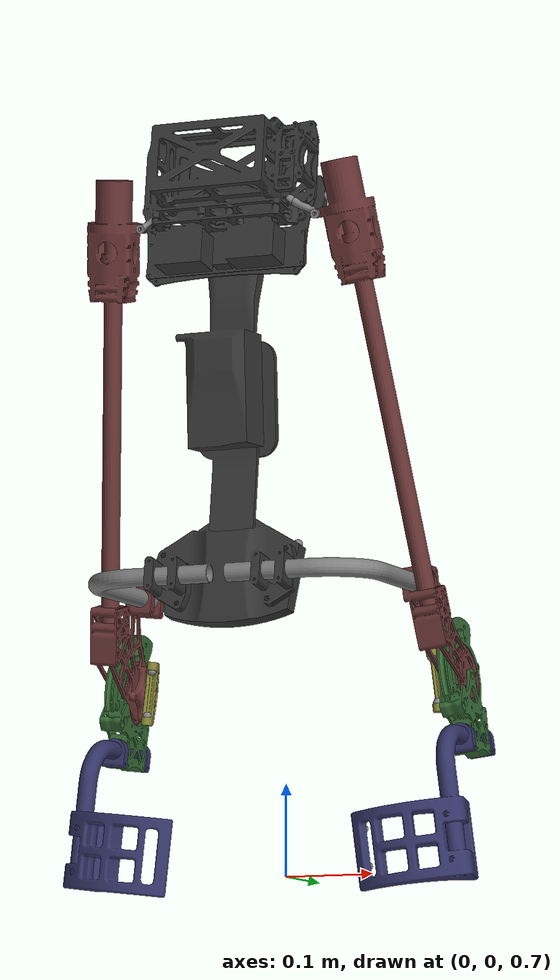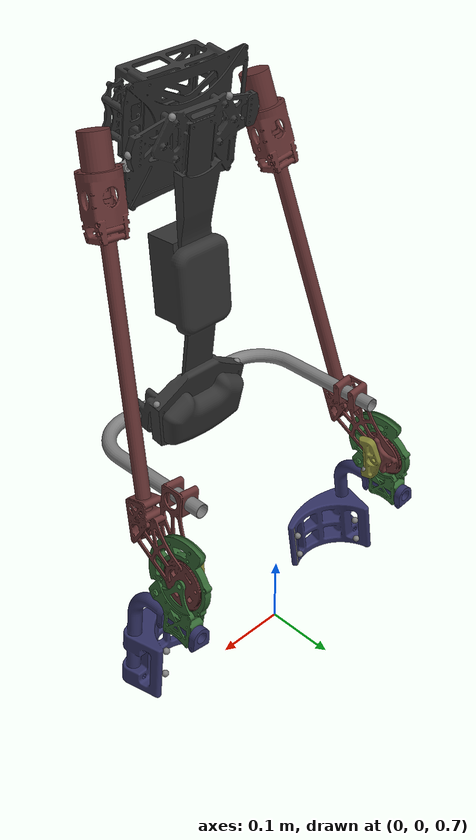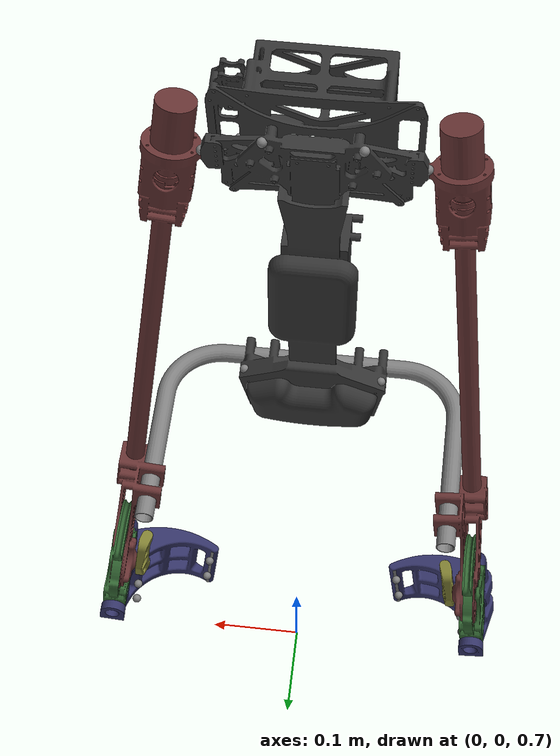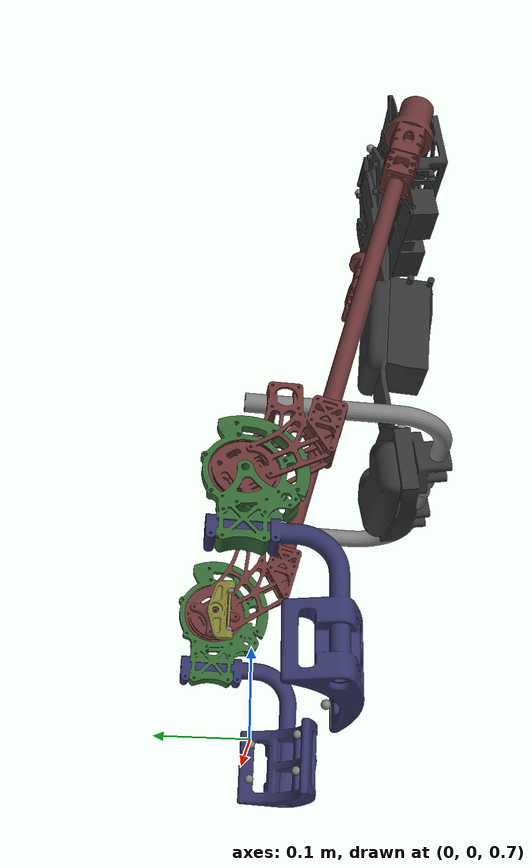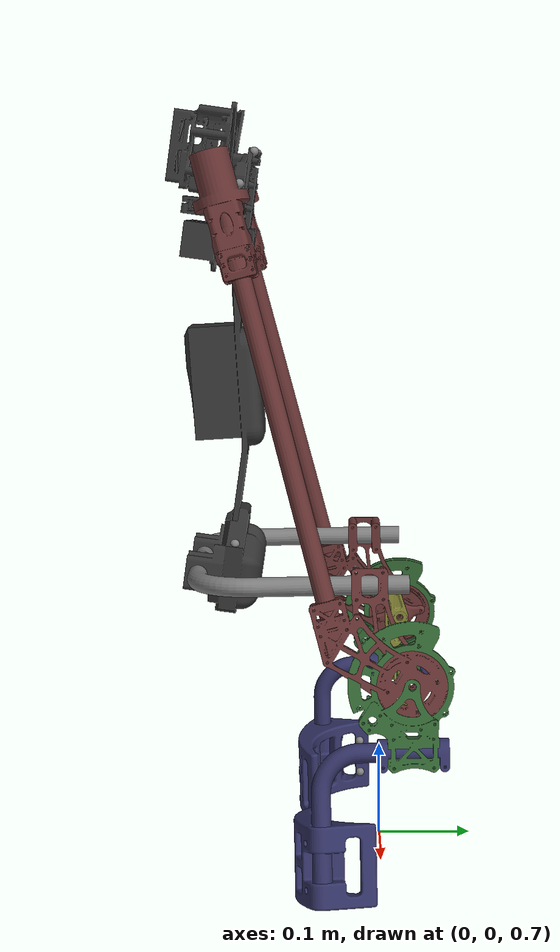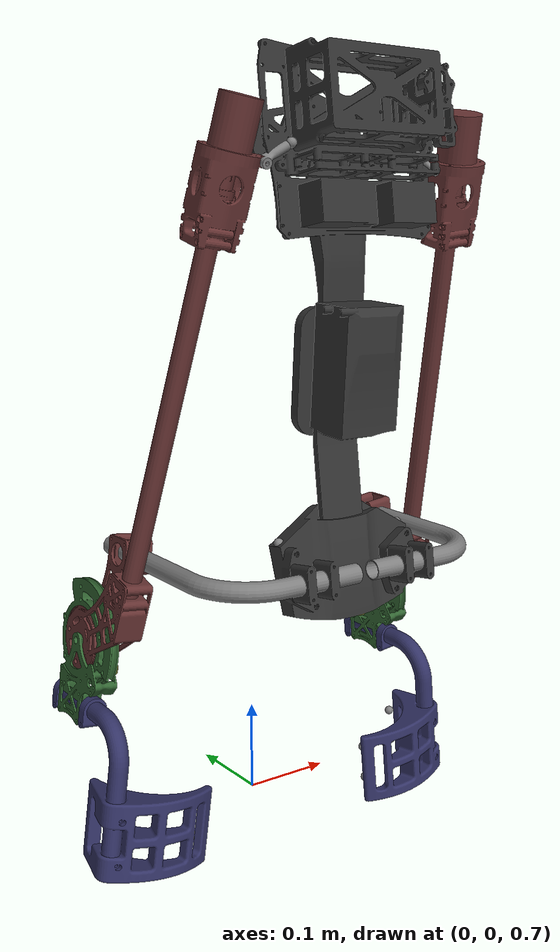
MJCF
<mujoco model="hipexo_v2_real_inertia">
    <compiler angle="radian" balanceinertia="true"/>

    <option gravity="0 0 -9.81"/>

    <!-- ==================== DEFAULT CLASSES ==================== -->
    <default>
        <!-- Exoskeleton-specific defaults wrapped in named class -->
        <default class="exo">
            <!-- Base settings for exoskeleton -->
            <joint stiffness="0" damping="0.5" armature="0.01"/>
            <geom contype="1" conaffinity="1"/>

            <!-- ===== GEOM CLASSES ===== -->
            <!-- Collision enabled (default for most parts) -->
            <default class="exo/collision">
                <geom contype="1" conaffinity="1"/>
            </default>

            <!-- Visual only - no collision (connector, hip_support) -->
            <default class="exo/visual">
                <geom contype="0" conaffinity="0"/>
            </default>

            <!-- ===== JOINT CLASSES ===== -->
            <!-- Structural joints (backpipe, pipe) - stiff connection -->
            <default class="exo/structural_joint">
                <joint stiffness="1" damping="1.0" armature="0.01" limited="true"/>
            </default>

            <!-- Active joints (hip, leg) - actuated -->
            <default class="exo/active_joint">
                <joint stiffness="0" damping="0.1" armature="0.05" limited="true"/>
            </default>

            <!-- Passive joints (connector, hip_support) - free rotation -->
            <default class="exo/passive_joint">
                <joint stiffness="0" damping="0.1" armature="0" limited="true"/>
            </default>
        </default>
    </default>

    <!-- ==================== ASSETS ==================== -->
    <asset>
        <!-- Materials for color distinction -->
        <material name="mat_backframe" rgba="0.2 0.2 0.2 1" specular="0.5" shininess="0.5"/>
        <material name="mat_backpipe" rgba="0.5 0.5 0.5 1" specular="0.3" shininess="0.2"/>
        <material name="mat_connector" rgba="0.5 0.5 0.5 1" specular="0.3" shininess="0.2"/>

        <material name="mat_joint" rgba="0.4 0.2 0.2 1" specular="0.7" shininess="0.6"/>
        <material name="mat_pulley" rgba="0.2 0.4 0.2 1" specular="0.6" shininess="0.4"/>
        <material name="mat_leg" rgba="0.2 0.2 0.4 1" specular="0.4" shininess="0.3"/>
        <material name="mat_hip_support" rgba="0.5 0.5 0.2 1" specular="0.4" shininess="0.3"/>

        <!-- Meshes -->
        <mesh name="backframe_base_bottom" file="../../TSAmesh/backframe_base_bottom.stl"/>
        <mesh name="backframe_base_top" file="../../TSAmesh/backframe_base_top.stl"/>
        <mesh name="backpipe_half" file="../../TSAmesh/backpipe_half.stl"/>
        <mesh name="connector" file="../../TSAmesh/connector.stl"/>
        <mesh name="hip_support" file="../../TSAmesh/hip_support.stl"/>
        <mesh name="joint_base" file="../../TSAmesh/joint_base.stl"/>
        <mesh name="joint_base_R" file="../../TSAmesh/joint_base_R.stl"/>
        <mesh name="leg" file="../../TSAmesh/leg.stl"/>
        <mesh name="leg_R" file="../../TSAmesh/leg_R.stl"/>
        <mesh name="pulley" file="../../TSAmesh/pulley.stl"/>
        <mesh name="pulley_R" file="../../TSAmesh/pulley_R.stl"/>
        <mesh name="tsa_motor_pipe" file="../../TSAmesh/tsa_motor_pipe.stl"/>
    </asset>

    <!-- ==================== WORLDBODY ==================== -->
    <worldbody>

        <body name="backframe_base_bottom" pos="0 -0.16 1" euler="-0.14 0 0">
            <freejoint name="root"/>
            <geom name="backframe_base_bottom_geom" type="mesh" mesh="backframe_base_bottom"
                  class="exo/collision" material="mat_backframe"/>
            <!-- backframe_base_bottom: from real_inertia.txt (at CoM) -->
            <inertial mass="0.57657479" pos="0 0.00694708 0.00196867"
                      fullinertia="0.00049371 0.00140837 0.00117938 0 0 -0.00001121"/>

            <site name="backframe_to_shoulder_bottom_L" pos="-0.075 0 0.037"/>
            <site name="backframe_to_shoulder_bottom_R" pos="0.075 0 0.037"/>

            <!-- ==================== BACKFRAME TOP ==================== -->
            <body name="backframe_base_top" pos="0 -0.001 0.05" euler="0 0 0">
                <geom name="backframe_base_top_geom" type="mesh" mesh="backframe_base_top"
                      class="exo/collision" material="mat_backframe"/>
                <!-- backframe_base_top: from real_inertia.txt (at CoM) -->
                <inertial mass="2.21336648" pos="0.00056857 -0.04887217 0.22887210"
                          fullinertia="0.02314268 0.02453637 0.00435991 -0.00004839 0.00024189 -0.00293655"/>

                <!-- Sites for shoulder strap (on backframe) -->

                <site name="backframe_to_shoulder_top_L" pos="-0.046 -0.035 0.395"/>
                <site name="backframe_to_shoulder_top_R" pos="0.046 -0.035 0.395"/>

                <!-- Sites for closed loop ball joints -->
                <site name="backframe_to_connector_L" pos="-0.104 -0.04317 0.35992"/>
                <site name="backframe_to_connector_R" pos="0.104 -0.04317 0.35992"/>

            </body>

            <!-- ==================== LEFT SIDE ==================== -->
            <body name="backpipe_half_L" pos="-0.16 0.183 0.035" euler="0.16 0 0">
                <joint name="backpipe_joint_L" type="hinge" axis="1 0 0" pos="0.15 -0.22 0"
                       class="exo/structural_joint" range="-0.3 0.3"/>
                <geom name="backpipe_half_L_geom" type="mesh" mesh="backpipe_half"
                      class="exo/visual" material="mat_backpipe"/>
                <!-- backpipe_half: from real_inertia.txt (at CoM) -->
                <inertial mass="0.05548025" pos="0.03328886 -0.14909289 0"
                          fullinertia="0.00029720 0.00012446 0.00041663 -0.00012871 0 0"/>

                <body name="joint_base_L" pos="-0.034 0 -0.098" euler="0 0.119 0">
                    <joint name="pipe_joint_L" type="hinge" axis="0 -1 0" pos="0.0225 -0.022 0.101"
                           class="exo/structural_joint" range="-0.5 0.5"/>
                    <geom name="joint_base_L_geom" type="mesh" mesh="joint_base"
                          class="exo/collision" material="mat_joint"/>
                    <!-- joint_base (L): from real_inertia.txt (at CoM) -->
                    <inertial mass="0.32399464" pos="0.00261229 -0.02913209 0.02882661"
                              fullinertia="0.00088962 0.00049096 0.00043956 0.00000556 0.00002313 -0.00024432"/>

                    <!-- Pulley & Leg -->
                    <body name="pulley_L" pos="0 0 0" euler="0 0 0">
                        <joint name="hip_joint_L" type="hinge" axis="-1 0 0" pos="0 0 0"
                               class="exo/active_joint" range="-2.2 0.3"/>
                        <geom name="pulley_L_geom" type="mesh" mesh="pulley"
                              class="exo/collision" material="mat_pulley"/>
                        <!-- pulley (L): from real_inertia.txt (at CoM) -->
                        <inertial mass="0.09716543" pos="-0.00013778 -0.01038359 -0.02273681"
                                  fullinertia="0.00023246 0.00017091 0.00007127 -0.00000035 -0.00000025 -0.00001507"/>

                        <body name="leg_L" pos="0 0 -0.0665" euler="0 0 0">
                            <joint name="leg_joint_L" type="hinge" axis="0 1 0" pos="0 0 0"
                                   class="exo/active_joint" range="-0.3 1.5708"/>
                            <geom name="leg_L_geom" type="mesh" mesh="leg"
                                  class="exo/visual" material="mat_leg"/>
                            <!-- leg (L): from real_inertia.txt (at CoM) -->
                            <inertial mass="0.40720231" pos="0.01271925 -0.07381513 -0.07182682"
                                      fullinertia="0.00185795 0.00149450 0.00091057 -0.00017231 -0.00021843 0.00058454"/>

                            <geom name="leg_in_L_contact" class="exo/collision" type="cylinder" size="0.005 0.04" pos="0.103 -0.104 -0.115"/>
                            <geom name="leg_out_L_contact" class="exo/collision" type="cylinder" size="0.005 0.04" pos="0.002 -0.045 -0.115"/>

                            <!-- Sites for leg_L strap -->

                            <site name="leg_top_in_L" pos="0.1 -0.095 -0.09"/>
                            <site name="leg_top_out_L" pos="0.02 -0.05 -0.09"/>
                            <site name="leg_bottom_in_L" pos="0.1 -0.095 -0.13"/>
                            <site name="leg_bottom_out_L" pos="0.02 -0.05 -0.13"/>
                        </body>
                    </body>

                    <!-- Hip support -->
                    <body name="hip_support_L" pos="0.019 0 0" euler="0 0 0">
                        <joint name="hip_support_joint_L" type="hinge" axis="1 0 0" pos="0 0 0"
                               class="exo/passive_joint" range="-0.5 0.5"/>
                        <geom name="hip_support_L_geom" type="mesh" mesh="hip_support"
                              class="exo/collision" material="mat_hip_support"/>
                        <!-- hip_support (L): from real_inertia.txt (at CoM) -->
                        <inertial mass="0.01250169" pos="0.00570428 -0.00749738 0"
                                  fullinertia="0.00000658 0.00000607 0.00000078 -0.00000012 0 0"/>

                        <!-- Sites for hip_L strap -->
                        <site name="hip_L_to_pelvis_L_top" pos="0.008 -0.016 0.025"/>
                        <site name="hip_L_to_pelvis_L_bottom" pos="0.008 -0.016 -0.025"/>
                    </body>

                    <!-- TSA motor pipe & connector -->
                    <body name="tsa_motor_pipe_L" pos="0 -0.170 0.441" euler="0.235 0 0">
                        <geom name="tsa_motor_pipe_L_geom" type="mesh" mesh="tsa_motor_pipe"
                              class="exo/collision" material="mat_joint"/>
                        <!-- tsa_motor_pipe (L): from real_inertia.txt (at CoM) -->
                        <inertial mass="0.68795278" pos="0.00008014 -0.00000370 0.04838748"
                                  fullinertia="0.00372618 0.00373338 0.00014605 0 -0.00000075 0.00000005"/>

                        <body name="connector_L" pos="0.0624 0 0.0713" euler="0 0.914 1.5708">
                            <joint name="connector_joint_L" type="hinge" axis="-1 0 0" pos="-0.005 0 -0.034"
                                   class="exo/passive_joint" range="-0.8 0.8"/>
                            <geom name="connector_L_geom" type="mesh" mesh="connector"
                                  class="exo/visual" material="mat_connector"/>
                            <!-- connector (L): from real_inertia.txt (at CoM) -->
                            <inertial mass="0.00278131" pos="0 0 -0.02005725"
                                      fullinertia="0.00000038 0.00000042 0.00000007 0 0 0"/>

                            <!-- Site for closed loop constraint -->
                            <site name="connector_L_to_backframe" pos="0 0 0"/>
                        </body>
                    </body>
                </body>
            </body>

            <!-- ==================== RIGHT SIDE ==================== -->
            <body name="backpipe_half_R" pos="0.16 0.183 0.035" euler="0.16 0 0">
                <joint name="backpipe_joint_R" type="hinge" axis="1 0 0" pos="-0.15 -0.22 0"
                       class="exo/structural_joint" range="-0.3 0.3"/>
                <geom name="backpipe_half_R_geom" type="mesh" mesh="backpipe_half" euler="0 3.14159 0"
                      class="exo/visual" material="mat_backpipe"/>
                <!-- backpipe_half (R): from real_inertia.txt (at CoM), X-mirrored -->
                <inertial mass="0.05548025" pos="-0.03328886 -0.14909289 0"
                          fullinertia="0.00029720 0.00012446 0.00041663 0.00012871 0 0"/>

                <body name="joint_base_R" pos="0.034 0 -0.098" euler="0 -0.119 0">
                    <joint name="pipe_joint_R" type="hinge" axis="0 -1 0" pos="-0.0225 -0.022 0.101"
                           class="exo/structural_joint" range="-0.5 0.5"/>
                    <geom name="joint_base_R_geom" type="mesh" mesh="joint_base_R"
                          class="exo/collision" material="mat_joint"/>
                    <!-- joint_base_R: from real_inertia.txt (at CoM) -->
                    <inertial mass="0.32399464" pos="-0.00261229 -0.02913265 0.02882577"
                              fullinertia="0.00088962 0.00049097 0.00043955 -0.00000556 -0.00002313 -0.00024432"/>

                    <!-- Pulley & Leg -->
                    <body name="pulley_R" pos="0 0 0" euler="0 0 0">
                        <joint name="hip_joint_R" type="hinge" axis="1 0 0" pos="0 0 0"
                               class="exo/active_joint" range="-0.3 2.2"/>
                        <geom name="pulley_R_geom" type="mesh" mesh="pulley_R"
                              class="exo/collision" material="mat_pulley"/>
                        <!-- pulley_R: from real_inertia.txt (at CoM) -->
                        <inertial mass="0.09716543" pos="0.00012873 -0.01038358 -0.02273681"
                                  fullinertia="0.00023246 0.00017091 0.00007127 0.00000036 0.00000022 -0.00001507"/>

                        <body name="leg_R" pos="0 0 -0.0665" euler="0 0 0">
                            <joint name="leg_joint_R" type="hinge" axis="0 1 0" pos="0 0 0"
                                   class="exo/active_joint" range="-1.57 0.3"/>
                            <geom name="leg_R_geom" type="mesh" mesh="leg_R"
                                  class="exo/visual" material="mat_leg"/>
                            <!-- leg_R: from real_inertia.txt (at CoM) -->
                            <inertial mass="0.40720231" pos="-0.01271929 -0.07381513 -0.07182694"
                                      fullinertia="0.00185796 0.00149450 0.00091057 0.00017231 0.00021842 0.00058454"/>

                            <geom name="leg_in_R_contact" class="exo/collision" type="cylinder" size="0.005 0.04" pos="-0.103 -0.104 -0.115"/>
                            <geom name="leg_out_R_contact" class="exo/collision" type="cylinder" size="0.005 0.04" pos="-0.002 -0.045 -0.115"/>

                            <!-- Sites for leg_R strap -->

                            <site name="leg_top_in_R" pos="-0.1 -0.095 -0.09"/>
                            <site name="leg_top_out_R" pos="-0.02 -0.05 -0.09"/>
                            <site name="leg_bottom_in_R" pos="-0.1 -0.095 -0.13"/>
                            <site name="leg_bottom_out_R" pos="-0.02 -0.05 -0.13"/>
                        </body>
                    </body>

                    <!-- Hip support -->
                    <body name="hip_support_R" pos="-0.019 0 0" euler="0 0 0">
                        <joint name="hip_support_joint_R" type="hinge" axis="-1 0 0" pos="0 0 0"
                               class="exo/passive_joint" range="-0.5 0.5"/>
                        <geom name="hip_support_R_geom" type="mesh" mesh="hip_support" euler="0 3.14159 0"
                              class="exo/collision" material="mat_hip_support"/>
                        <!-- hip_support (R): from real_inertia.txt (at CoM), X-mirrored -->
                        <inertial mass="0.01250169" pos="-0.00570428 -0.00749738 0"
                                  fullinertia="0.00000658 0.00000607 0.00000078 0.00000012 0 0"/>

                        <!-- Sites for hip_R strap -->
                        <site name="hip_R_to_pelvis_R_top" pos="-0.008 -0.016 0.025"/>
                        <site name="hip_R_to_pelvis_R_bottom" pos="-0.008 -0.016 -0.025"/>
                    </body>

                    <!-- TSA motor pipe & connector -->
                    <body name="tsa_motor_pipe_R" pos="0 -0.170 0.441" euler="0.235 0 3.14159">
                        <geom name="tsa_motor_pipe_R_geom" type="mesh" mesh="tsa_motor_pipe"
                              class="exo/collision" material="mat_joint"/>
                        <!-- tsa_motor_pipe (R): from real_inertia.txt (at CoM), X-mirrored -->
                        <inertial mass="0.68795278" pos="-0.00008014 0.00000370 0.04838748"
                                  fullinertia="0.00372618 0.00373338 0.00014605 0 0.00000075 -0.00000005"/>

                        <body name="connector_R" pos="0.0624 0 0.0713" euler="0 0.914 1.5708">
                            <joint name="connector_joint_R" type="hinge" axis="-1 0 0" pos="-0.005 0 -0.034"
                                   class="exo/passive_joint" range="-0.8 0.8"/>
                            <geom name="connector_R_geom" type="mesh" mesh="connector"
                                  class="exo/visual" material="mat_connector"/>
                            <!-- connector (R): from real_inertia.txt (at CoM) - symmetric -->
                            <inertial mass="0.00278131" pos="0 0 -0.02005725"
                                      fullinertia="0.00000038 0.00000042 0.00000007 0 0 0"/>

                            <!-- Site for closed loop constraint -->
                            <site name="connector_R_to_backframe" pos="0 0 0"/>
                        </body>
                    </body>
                </body>
            </body>
        </body>
    </worldbody>

    <!-- ==================== EQUALITY CONSTRAINT PARAMETERS ==================== -->

    <equality>
        <!-- Closed loop: backframe ↔ connector ball joints -->
        <connect name="connector_ball_L"
                 site1="backframe_to_connector_L"
                 site2="connector_L_to_backframe"
                 solref="0.002 1"
                 solimp="0.9 0.9 0.0001"/>

        <connect name="connector_ball_R"
                 site1="backframe_to_connector_R"
                 site2="connector_R_to_backframe"
                 solref="0.002 1"
                 solimp="0.9 0.9 0.0001"/>
    </equality>

    <!-- ==================== ACTUATORS ==================== -->
    <actuator>
        <!-- Hip joint motors (main actuation) -->
        <motor name="left_hip_servo" joint="hip_joint_L" gear="50"
               ctrllimited="true" ctrlrange="-1 1"/>
        <motor name="right_hip_servo" joint="hip_joint_R" gear="-50"
               ctrllimited="true" ctrlrange="-1 1"/>
    </actuator>

    <!-- ==================== SENSORS ==================== -->
    <sensor>
        <!-- Joint position sensors -->
        <jointpos name="hip_L_pos" joint="hip_joint_L"/>
        <jointpos name="hip_R_pos" joint="hip_joint_R"/>

        <!-- Joint velocity sensors -->
        <jointvel name="hip_L_vel" joint="hip_joint_L"/>
        <jointvel name="hip_R_vel" joint="hip_joint_R"/>

        <!-- Actuator force sensors -->
        <actuatorfrc name="hip_L_frc" actuator="left_hip_servo"/>
        <actuatorfrc name="hip_R_frc" actuator="right_hip_servo"/>
    </sensor>

    <!-- ==================== CONTACT EXCLUSIONS ==================== -->
    <contact>
        <!-- Exclude self-collision within same mechanism -->
        <exclude body1="backframe_base_bottom" body2="backframe_base_top"/>
        <exclude body1="backpipe_half_L" body2="joint_base_L"/>
        <exclude body1="backpipe_half_R" body2="joint_base_R"/>
        <exclude body1="joint_base_L" body2="pulley_L"/>
        <exclude body1="joint_base_R" body2="pulley_R"/>
        <exclude body1="pulley_L" body2="leg_L"/>
        <exclude body1="pulley_R" body2="leg_R"/>
        <exclude body1="joint_base_L" body2="hip_support_L"/>
        <exclude body1="joint_base_R" body2="hip_support_R"/>
        <exclude body1="joint_base_L" body2="tsa_motor_pipe_L"/>
        <exclude body1="joint_base_R" body2="tsa_motor_pipe_R"/>
        <exclude body1="tsa_motor_pipe_L" body2="connector_L"/>
        <exclude body1="tsa_motor_pipe_R" body2="connector_R"/>

        <!-- Exclude connector from backframe (they are connected via equality) -->
        <exclude body1="backframe_base_bottom" body2="connector_L"/>
        <exclude body1="backframe_base_bottom" body2="connector_R"/>
        <exclude body1="backframe_base_bottom" body2="backpipe_half_L"/>
        <exclude body1="backframe_base_bottom" body2="backpipe_half_R"/>
    </contact>

</mujoco>
